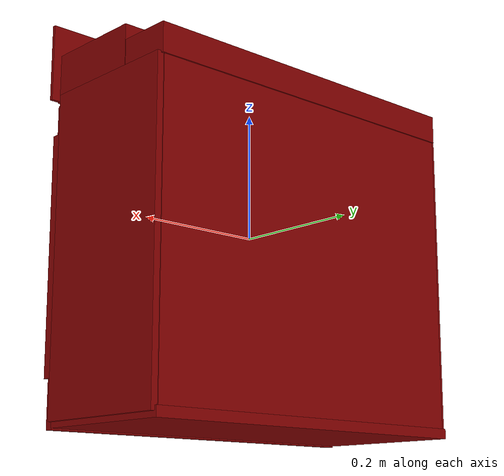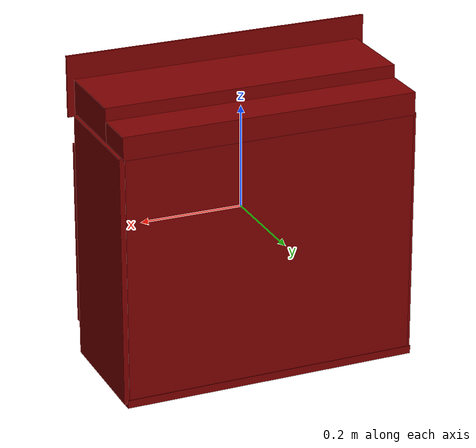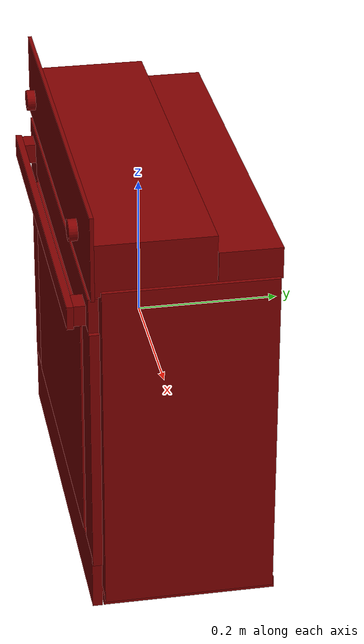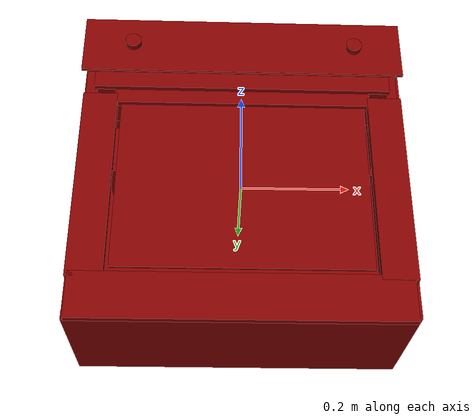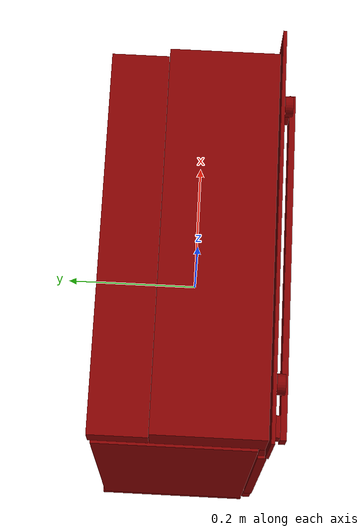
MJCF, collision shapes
<mujoco model="model">
  <compiler angle="radian"/>
  <asset>
    <mesh file="visuals/Body001.obj" name="Body001_vis"/>
    <mesh file="visuals/Container001.obj" name="Container001_vis"/>
    <mesh file="visuals/Door001.obj" name="Door001_vis"/>
    <mesh file="visuals/Door001_Clear.obj" name="Door001_Clear_vis"/>
    <mesh file="visuals/Knob001.obj" name="Knob001_vis"/>
    <mesh file="visuals/Knob002.obj" name="Knob002_vis"/>
    <texture file="visuals/T_BC001.png" name="Body001_material" type="2d"/>
    <material name="Body001_material" rgba="1 1 1 1.0" texture="Body001_material" shininess="0.4472135901451111" specular="0.3103448502657381"/>
    <texture file="visuals/T_BC001.png" name="Container001_material" type="2d"/>
    <material name="Container001_material" rgba="1 1 1 1.0" texture="Container001_material" shininess="0.4472135901451111" specular="0.3103448502657381"/>
    <texture file="visuals/T_BC001.png" name="Door001_material" type="2d"/>
    <material name="Door001_material" rgba="1 1 1 1.0" texture="Door001_material" shininess="0.4472135901451111" specular="0.3103448502657381"/>
    <texture file="visuals/T_BC001.png" name="Door001_Clear_material" type="2d"/>
    <material name="Door001_Clear_material" rgba="1 1 1 0.7923496961593628" texture="Door001_Clear_material" shininess="0.4472135901451111" specular="0.3103448502657381"/>
    <texture file="visuals/T_BC001.png" name="Knob001_material" type="2d"/>
    <material name="Knob001_material" rgba="1 1 1 1.0" texture="Knob001_material" shininess="0.4472135901451111" specular="0.3103448502657381"/>
    <texture file="visuals/T_BC001.png" name="Knob002_material" type="2d"/>
    <material name="Knob002_material" rgba="1 1 1 1.0" texture="Knob002_material" shininess="0.4472135901451111" specular="0.3103448502657381"/>
  </asset>
  <default>
    <default class="visual">
      <geom conaffinity="0" contype="0" group="1" type="mesh"/>
    </default>
    <default class="collision">
      <geom group="0" rgba="0.5 0 0 0.5"/>
    </default>
    <default class="spawn">
      <geom group="0" rgba="1 1 1 0.5" contype="0" conaffinity="0"/>
      <site group="0" rgba="1 1 1 0.5"/>
    </default>
    <default class="region">
      <geom group="1" conaffinity="0" contype="0" rgba="0 1 0 0"/>
    </default>
  </default>
  <worldbody>
    <body>
      <body name="object">
        <geom mesh="Body001_vis" type="mesh" solimp="0.998 0.998 0.001" solref="0.001 1" density="100" friction="0.95 0.3 0.1" class="visual" material="Body001_material"/>
        <geom class="collision" type="box" pos="-0.002977 0.020609 -0.292087" size="0.287826269865036 0.11917100101709366 0.007825592532753944" quat="1.0 0.0 0.0 0.0"/>
        <geom class="collision" type="box" pos="-0.002247 0.113907 -0.040503" size="0.28297093510627747 0.024074535816907883 0.24727486073970795" quat="1.0 0.0 0.0 0.0"/>
        <geom class="collision" type="box" pos="-0.000000 -0.109782 0.243345" size="0.2988271415233612 0.0026292530819773674 0.05907480791211128" quat="1.0 0.0 0.0 0.0"/>
        <geom class="collision" type="box" pos="-0.000623 0.097916 0.209871" size="0.2858453094959259 0.04251359775662422 0.022268762812018394" quat="1.0 0.0 0.0 0.0"/>
        <geom class="collision" type="box" pos="-0.276745 0.019721 -0.050587" size="0.01379345916211605 0.11713120341300964 0.24085582792758942" quat="1.0 0.0 0.0 0.0"/>
        <geom class="collision" type="box" pos="0.277237 0.019721 -0.050587" size="0.01379345916211605 0.11713124066591263 0.24085582792758942" quat="1.0 0.0 0.0 0.0"/>
        <geom class="collision" type="box" pos="-0.000623 -0.028483 0.219433" size="0.28584086894989014 0.0827447921037674 0.037092845886945724" quat="1.0 0.0 0.0 0.0"/>
        <body name="Container001">
          <joint axis="0.0 -1.0 0.0" pos="0.002570 0.003596 -0.000789" limited="true" name="Container001_joint" range="0.0 0.12" type="slide" damping="1" frictionloss="1" armature=".01" stiffness="0.05"/>
          <geom mesh="Container001_vis" type="mesh" solimp="0.998 0.998 0.001" solref="0.001 1" density="100" friction="0.95 0.3 0.1" class="visual" material="Container001_material"/>
          <geom class="collision" type="box" pos="-0.002149 0.003598 -0.003941" size="0.23779800534248352 0.07819943875074387 0.006864964030683041" quat="1.0 0.0 0.0 0.0"/>
        </body>
        <body name="Door001">
          <joint axis="1.0 0.0 0.0" pos="-0.000759 -0.113281 -0.298950" limited="true" name="Door001_joint" range="0.0 1.15" type="hinge" damping="5" frictionloss="1" armature=".01" stiffness="0.05"/>
          <geom mesh="Door001_vis" type="mesh" solimp="0.998 0.998 0.001" solref="0.001 1" density="100" friction="0.95 0.3 0.1" class="visual" material="Door001_material"/>
          <geom class="collision" type="box" pos="-0.001617 -0.106928 0.145229" size="0.2840000092983246 0.006766056641936302 0.03355890139937401" quat="1.0 0.0 0.0 0.0"/>
          <geom class="collision" type="box" pos="-0.247884 -0.121775 0.144470" size="0.016126926988363266 0.009989230893552303 0.014420450665056705" quat="1.0 0.0 0.0 0.0"/>
          <geom class="collision" type="box" pos="-0.001775 -0.134264 0.143584" size="0.2660548985004425 0.004589806776493788 0.01625598780810833" quat="1.0 0.0 0.0 0.0"/>
          <geom class="collision" type="box" pos="0.245730 -0.121775 0.144470" size="0.016126926988363266 0.009989230893552303 0.014420450665056705" quat="1.0 0.0 0.0 0.0"/>
          <geom class="collision" type="box" pos="-0.001617 -0.106928 -0.261602" size="0.2840000092983246 0.006766056641936302 0.04044818505644798" quat="1.0 0.0 0.0 0.0"/>
          <geom class="collision" type="box" pos="0.258168 -0.106928 -0.050181" size="0.031093288213014603 0.006766056641936302 0.1800360381603241" quat="1.0 0.0 0.0 0.0"/>
          <geom class="collision" type="box" pos="-0.258654 -0.106928 -0.050181" size="0.031093288213014603 0.006766056641936302 0.1800360381603241" quat="1.0 0.0 0.0 0.0"/>
          <body name="Door001_Clear">
            <geom mesh="Door001_Clear_vis" type="mesh" solimp="0.998 0.998 0.001" solref="0.001 1" density="100" friction="0.95 0.3 0.1" class="visual" material="Door001_Clear_material"/>
            <geom class="collision" type="box" pos="-0.000245 -0.113436 -0.054982" size="0.21909628808498383 0.002515627769753337 0.1593562513589859" quat="1.0 0.0 0.0 0.0"/>
          </body>
        </body>
        <body name="Knob001">
          <joint axis="0.0 1.0 0.0" pos="-0.205684 -0.122515 0.241745" limited="true" name="Knob001_joint" range="0.0 5.148721293383272" type="hinge" damping="0.005"/>
          <geom mesh="Knob001_vis" type="mesh" solimp="0.998 0.998 0.001" solref="0.001 1" density="100" friction="0.95 0.3 0.1" class="visual" material="Knob001_material"/>
          <geom class="collision" type="cylinder" pos="-0.205577 -0.122146 0.242454" size="0.014610936865210533 0.005890557076781988" quat="0.7071067094802856 0.7071068286895752 0.0 0.0"/>
        </body>
        <body name="Knob002">
          <joint axis="0.0 -1.0 0.0" pos="0.208291 -0.122509 0.242491" limited="true" name="Knob002_joint" range="-1.0471975511965976 3.141592653589793" type="hinge" damping="0.005"/>
          <geom mesh="Knob002_vis" type="mesh" solimp="0.998 0.998 0.001" solref="0.001 1" density="100" friction="0.95 0.3 0.1" class="visual" material="Knob002_material"/>
          <geom class="collision" type="cylinder" pos="0.208333 -0.122146 0.242454" size="0.014610936865210533 0.005890557076781988" quat="0.7071067094802856 0.7071068286895752 0.0 0.0"/>
        </body>
        <geom class="region" name="reg_main" type="box" pos="-0.0014039999999999886 0.011661999999999999 0.0014295000000000002" size="0.296558 0.125378 0.3008685"/>
        <geom class="region" name="reg_int" type="box" pos="0.002716499999999983 0.006781500000000003 -0.056689" size="0.25823850000000004 0.10005349999999999 0.22700900000000002"/>
      </body>
    </body>
  </worldbody>
  <actuator>
    <motor name="Container001_joint_actuator" joint="Container001_joint" gear="10"/>
    <motor name="Door001_joint_actuator" joint="Door001_joint" gear="20"/>
    <motor name="Knob001_joint_actuator" joint="Knob001_joint" gear="50"/>
    <motor name="Knob002_joint_actuator" joint="Knob002_joint" gear="50"/>
  </actuator>
</mujoco>
